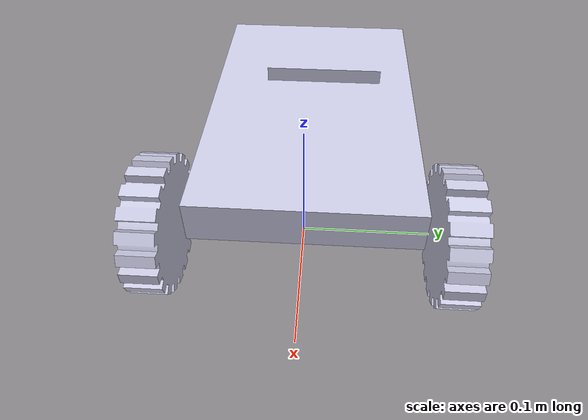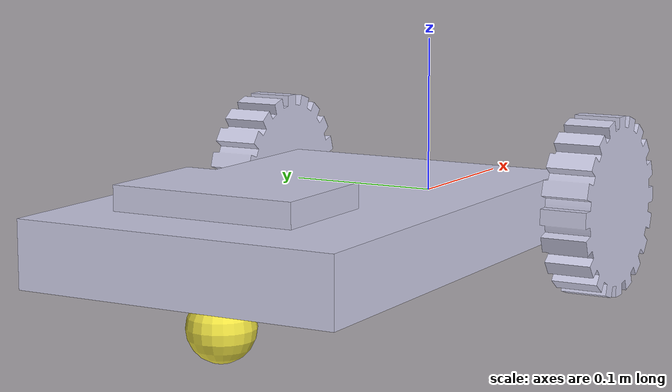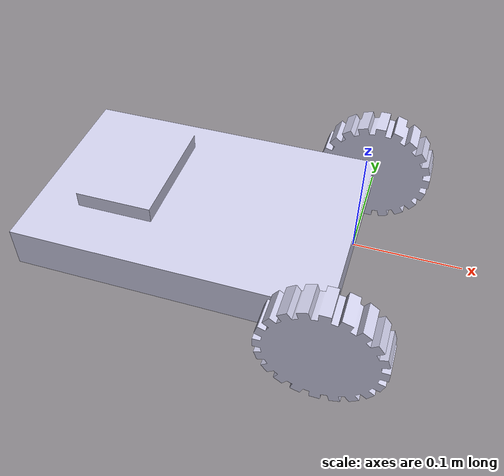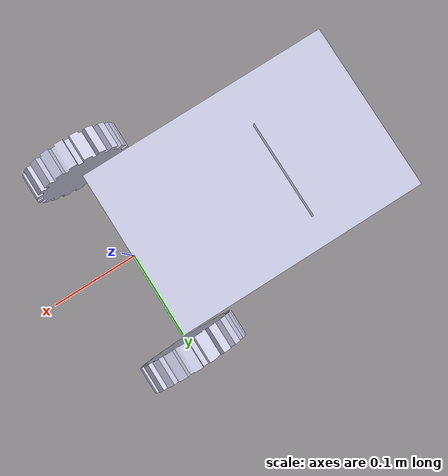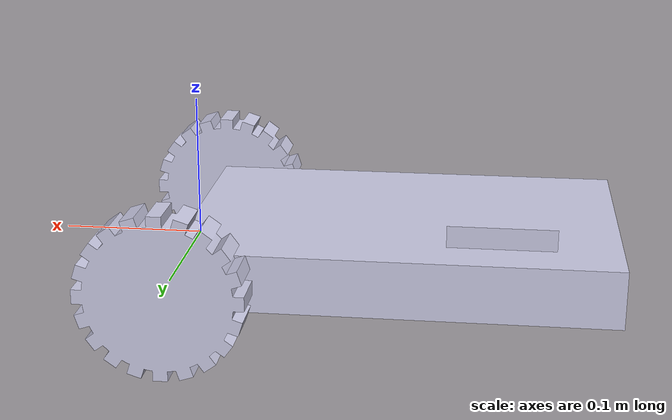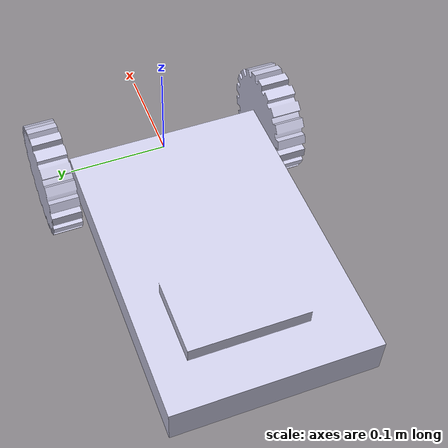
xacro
<?xml version='1.0' encoding='utf-8'?>
<robot xmlns:xacro="http://www.ros.org/wiki/xacro" name="krytn">

    <xacro:include filename="$(find first_robot_freecad)/urdf/FirstRobot.urdf" />

    <gazebo reference="caster_wheel">

        <collision>
            <surface>
                <friction>
                    <ode>
                        <mu>0.1</mu>
                        <mu2>0.1</mu2>
                        <slip1>0</slip1>
                        <slip2>0</slip2>
                    </ode>
                </friction>
            </surface>
            <max_contacts>1</max_contacts>
        </collision>

    </gazebo>

    <gazebo reference="left_wheel">
        <collision>
            <surface>
                <friction>
                    <ode>
                        <mu>1.0</mu>
                        <mu2>1.0</mu2>
                        <fdir1>0 0 1</fdir1>
                        <slip1>0.0</slip1>
                        <slip2>0.0</slip2>
                    </ode>
                </friction>
            </surface>
            <max_contacts>1</max_contacts>
        </collision>

    </gazebo>

    <gazebo reference="right_wheel">

        <collision>
            <surface>
                <friction>
                    <ode>
                        <mu>1.0</mu>
                        <mu2>1.0</mu2>
                        <fdir1>0 0 1</fdir1>
                        <slip1>0.0</slip1>
                        <slip2>0.0</slip2>
                    </ode>
                </friction>
            </surface>
            <max_contacts>1</max_contacts>
        </collision>
    </gazebo>

    <!-- Configure diff drive plugin. -->
    <gazebo>
        <plugin filename="gz-sim-diff-drive-system" name="gz::sim::systems::DiffDrive">
            <left_joint>left_wheel_joint</left_joint>
            <right_joint>right_wheel_joint</right_joint>
            <wheel_separation>0.2</wheel_separation>
            <wheel_radius>0.05</wheel_radius>
            <odom_publish_frequency>1</odom_publish_frequency>
            <max_linear_acceleration>1</max_linear_acceleration>
            <min_linear_acceleration>-1</min_linear_acceleration>
            <max_angular_acceleration>2</max_angular_acceleration>
            <min_angular_acceleration>-2</min_angular_acceleration>
            <max_linear_velocity>0.5</max_linear_velocity>
            <min_linear_velocity>-0.5</min_linear_velocity>
            <max_angular_velocity>1</max_angular_velocity>
            <min_angular_velocity>-1</min_angular_velocity>
        </plugin>
    </gazebo>

</robot>

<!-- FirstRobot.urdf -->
<robot name="Robot">
  <!--Generated by CROSS, a ROS Workbench for FreeCAD (https://github.com/galou/freecad.cross)-->
  <link name="base_link">
    <visual>
      <!--Box_Chassis/Body001.-->
      <origin rpy="0.0 -0.0 0.0" xyz="0.0 0.0 0.0"/>
      <geometry>
        <mesh filename="package://first_robot_freecad/meshes/first_robot_Body001.dae"/>
      </geometry>
    </visual>
    <collision>
      <!--Box_Chassis/Body001.-->
      <origin rpy="0.0 -0.0 0.0" xyz="0.0 0.0 0.0"/>
      <geometry>
        <mesh filename="package://first_robot_freecad/meshes/first_robot_Body001.dae"/>
      </geometry>
    </collision>
    <inertial>
      <mass value="6.4799999999999995"/>
      <origin rpy="0.0 -0.0 0.0" xyz="-0.15 -8.7e-18 4e-19"/>
      <inertia ixx="0.022464" ixy="0.0" ixz="-0.0" iyy="0.049464" iyz="0.0" izz="0.0702"/>
    </inertial>
  </link>
  <link name="left_wheel">
    <visual>
      <!--Adjustable Wheel/Body.-->
      <origin rpy="0.0 -0.0 0.0" xyz="0.0 0.0 0.0"/>
      <geometry>
        <mesh filename="package://first_robot_freecad/meshes/first_robot_Body.dae"/>
      </geometry>
    </visual>
    <collision>
      <!--Adjustable Wheel.Body_bbox-->
      <origin rpy="0.0 -0.0 0.0" xyz="0.0 0.0 0.015"/>
      <geometry>
        <cylinder length="0.03000000000000005" radius="0.06"/>
      </geometry>
    </collision>
    <inertial>
      <mass value="0.7509245446194294"/>
      <origin rpy="0.0 -0.0 0.0" xyz="-1.38e-17 -2.1e-18 -1e-19"/>
      <inertia ixx="0.0006186158699452" ixy="-0.0" ixz="-0.0" iyy="0.0011245930581975" iyz="-0.0" izz="0.0006186158699452"/>
    </inertial>
  </link>
  <link name="right_wheel">
    <visual>
      <!--Adjustable Wheel/Body.-->
      <origin rpy="0.0 -0.0 0.0" xyz="0.0 0.0 0.0"/>
      <geometry>
        <mesh filename="package://first_robot_freecad/meshes/first_robot_Body.dae"/>
      </geometry>
    </visual>
    <collision>
      <!--Adjustable Wheel.Body_bbox-->
      <origin rpy="0.0 -0.0 0.0" xyz="0.0 0.0 0.015"/>
      <geometry>
        <cylinder length="0.03000000000000005" radius="0.06"/>
      </geometry>
    </collision>
    <inertial>
      <mass value="0.7509245446194294"/>
      <origin rpy="0.0 -0.0 0.0" xyz="-1.38e-17 -2.1e-18 -1e-19"/>
      <inertia ixx="0.0006186158699452" ixy="-0.0" ixz="-0.0" iyy="0.0011245930581975" iyz="-0.0" izz="0.0006186158699452"/>
    </inertial>
  </link>
  <link name="caster_wheel">
    <visual>
      <!--Sphere001-->
      <geometry>
        <sphere radius="0.02"/>
      </geometry>
    </visual>
    <collision>
      <!--Sphere001-->
      <geometry>
        <sphere radius="0.02"/>
      </geometry>
    </collision>
    <inertial>
      <mass value="0.0"/>
      <origin rpy="0.0 -0.0 0.0" xyz="0.0 0.0 0.0"/>
      <inertia ixx="0.0" ixy="0.0" ixz="0.0" iyy="0.0" iyz="0.0" izz="0.0"/>
    </inertial>
  </link>
  <joint name="left_wheel_joint" type="continuous">
    <parent link="base_link"/>
    <child link="left_wheel"/>
    <origin rpy="-1.5707963267948966 0.0 0.0" xyz="0.0 0.12 0.0"/>
    <axis xyz="0 0 1"/>
  </joint>
  <joint name="right_wheel_joint" type="continuous">
    <parent link="base_link"/>
    <child link="right_wheel"/>
    <origin rpy="-1.5707963267948966 0.0 0.0" xyz="0.0 -0.12 0.0"/>
    <axis xyz="0 0 1"/>
  </joint>
  <joint name="caster_wheel_joint" type="fixed">
    <parent link="base_link"/>
    <child link="caster_wheel"/>
    <origin rpy="0.0 -0.0 0.0" xyz="-0.25 0.0 -0.04"/>
  </joint>
</robot>
